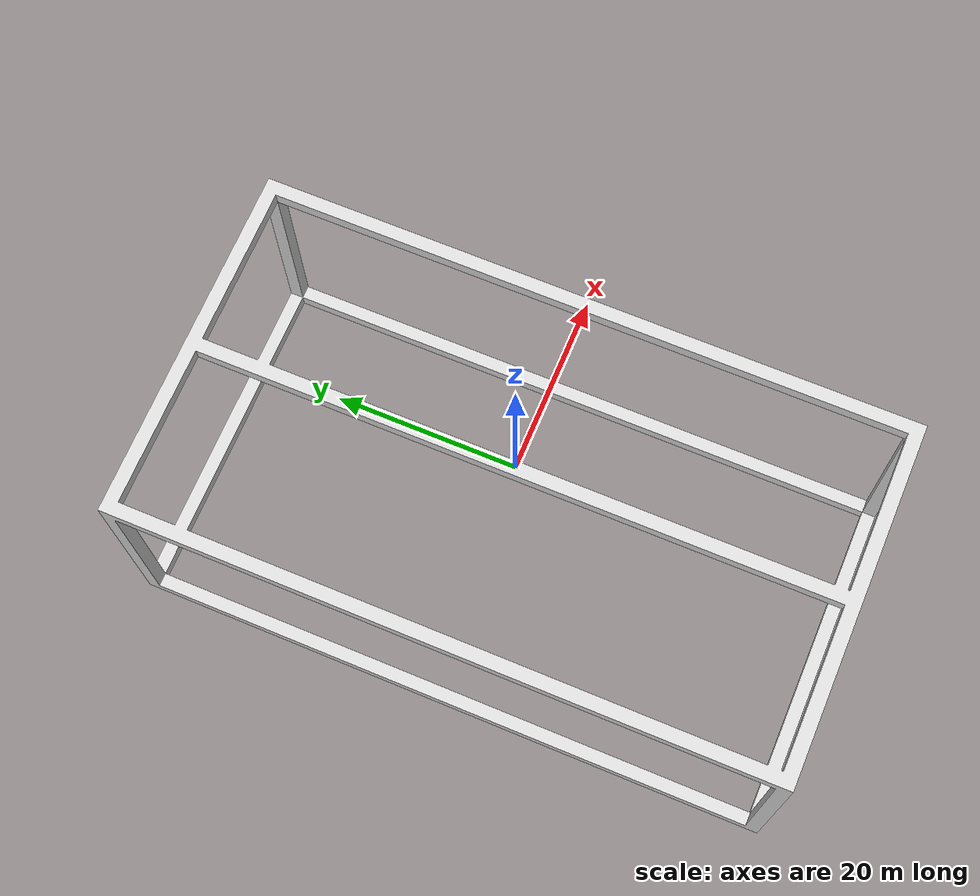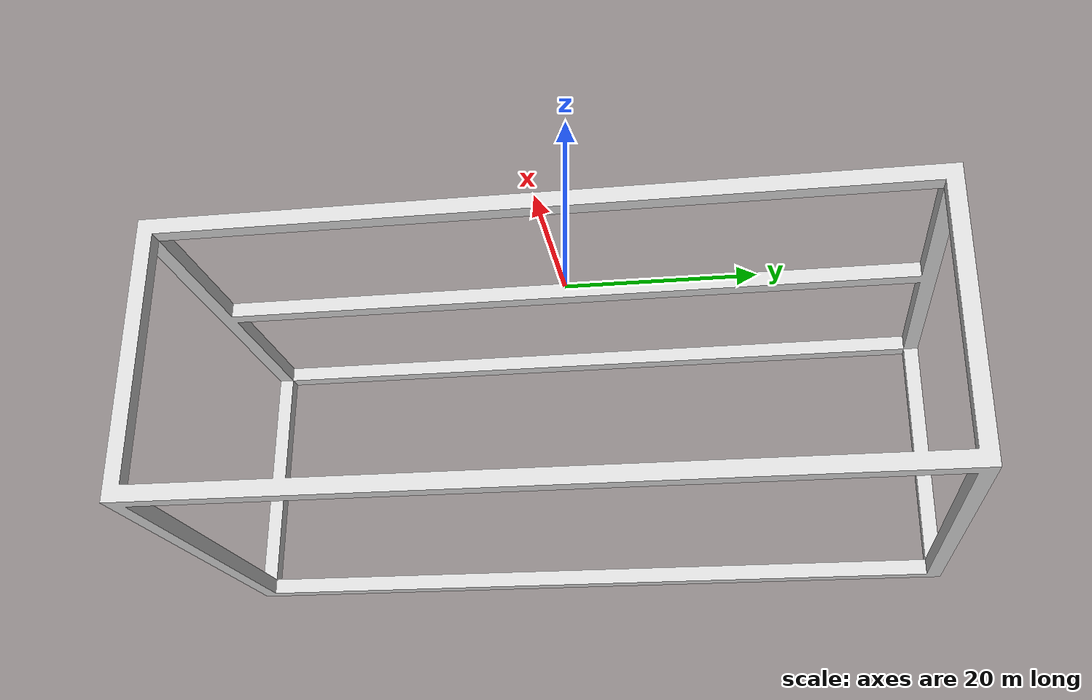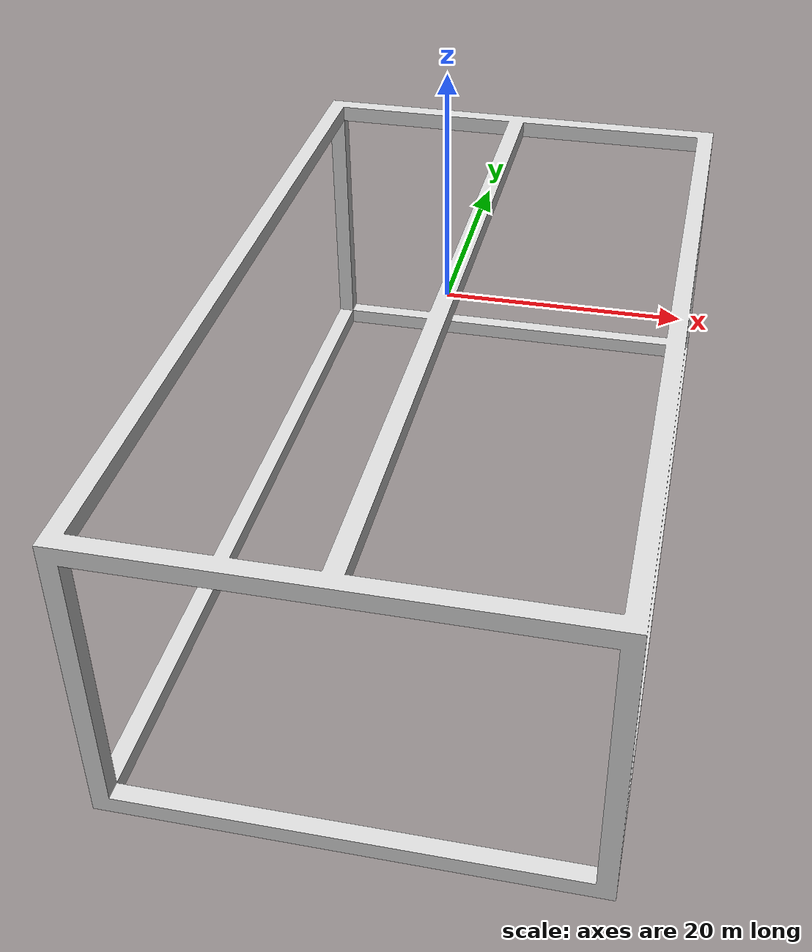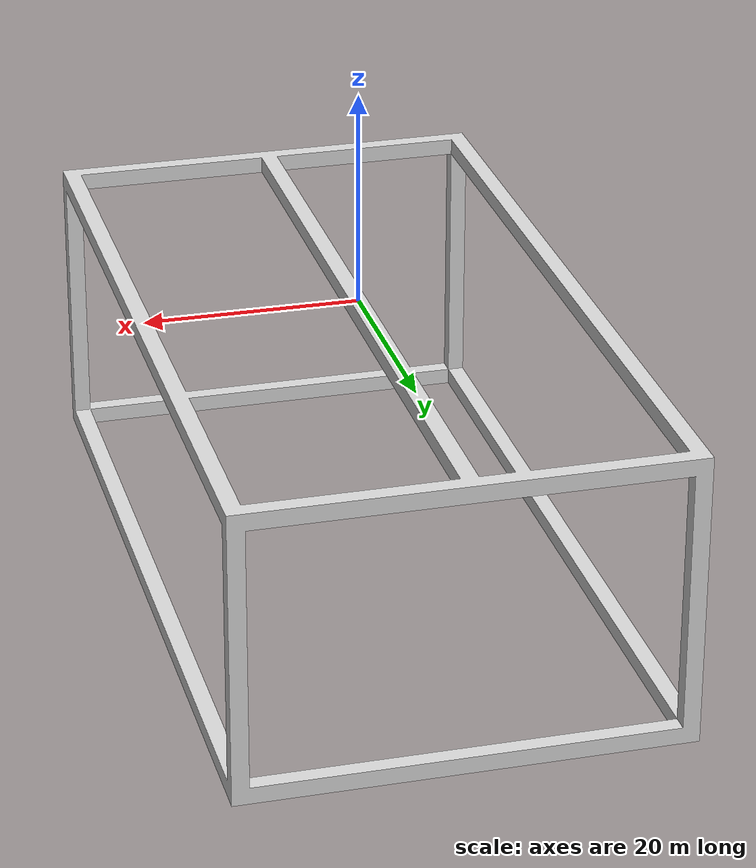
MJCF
<mujoco model="express_rack_mesh">
  <default>
    <default class="visual">
      <geom group="2" type="mesh" contype="0" conaffinity="0"/>
    </default>
    <default class="collision">
      <geom group="3" type="mesh"/>
    </default>
  </default>
  <asset>
    <material name="mtl_express_rack_mesh" specular="0.20000000000000004" shininess="1.0" rgba="0.85098039 0.85098039 0.85098039 1.0"/>
    <mesh file="express_rack_mesh.obj"/>
  </asset>
  <worldbody>
    <body name="express_rack_mesh">
      <geom material="mtl_express_rack_mesh" mesh="express_rack_mesh" class="visual"/>
      <geom mesh="express_rack_mesh" class="collision"/>
    </body>
  </worldbody>
</mujoco>
